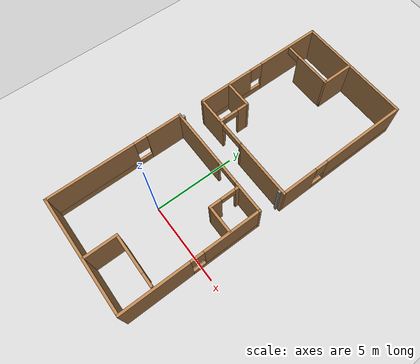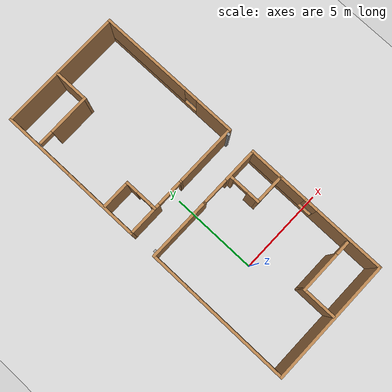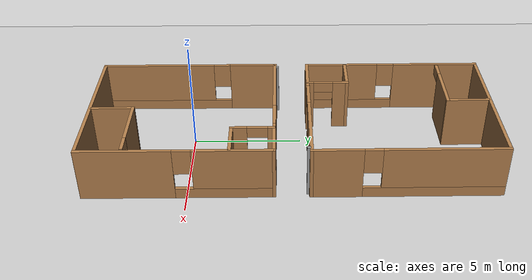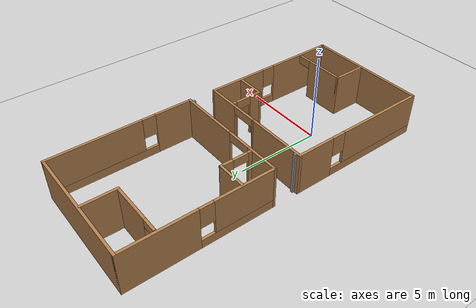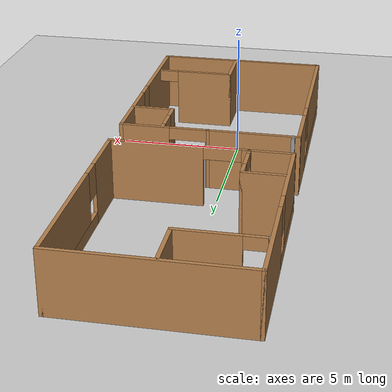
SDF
<sdf version="1.7">
 <world name="default">
  <light name="sun" type="directional">
   <pose>0 0 10 0 -0 0</pose>
   <diffuse>0.8 0.8 0.8 1</diffuse>
   <specular>0.2 0.2 0.2 1</specular>
   <attenuation>
    <range>1000</range>
    <constant>0.9</constant>
    <linear>0.01</linear>
    <quadratic>0.001</quadratic>
   </attenuation>
   <direction>-0.5 0.1 -0.9</direction>
   <spot><inner_angle>0</inner_angle><outer_angle>0</outer_angle><falloff>0</falloff></spot>
  </light>
  <model name="ground_plane">
   <static>1</static>
   <link name="link">
    <collision name="collision">
     <geometry><plane><normal>0 0 1</normal><size>100 100</size></plane></geometry>
     <surface><friction><ode><mu>100</mu><mu2>50</mu2></ode></friction></surface>
    </collision>
    <visual name="visual">
     <cast_shadows>0</cast_shadows>
     <geometry><plane><normal>0 0 1</normal><size>100 100</size></plane></geometry>
     <material>
      <script><uri>file://media/materials/scripts/gazebo.material</uri><name>Gazebo/Grey</name></script>
     </material>
    </visual>
   </link>
  </model>
  <gravity>0 0 -9.8</gravity>
  <magnetic_field>6e-06 2.3e-05 -4.2e-05</magnetic_field>
  <atmosphere type="adiabatic"/>
  <physics type="ode">
   <max_step_size>0.001</max_step_size>
   <real_time_factor>1</real_time_factor>
   <real_time_update_rate>1000</real_time_update_rate>
  </physics>
  <scene><ambient>0.4 0.4 0.4 1</ambient><background>0.7 0.7 0.7 1</background><shadows>1</shadows></scene>
  <audio><device>default</device></audio>
  <spherical_coordinates>
   <surface_model>EARTH_WGS84</surface_model>
   <latitude_deg>0</latitude_deg>
   <longitude_deg>0</longitude_deg>
   <elevation>0</elevation>
   <heading_deg>0</heading_deg>
  </spherical_coordinates>
  <model name="cafe">
   <pose>0.555959 -0.30949 0 0 -0 0</pose>
   <link name="Wall_12">
    <collision name="Wall_12_Collision">
     <geometry><box><size>3.75 0.15 2.5</size></box></geometry>
     <pose>0 0 1.25 0 -0 0</pose>
    </collision>
    <visual name="Wall_12_Visual">
     <pose>0 0 1.25 0 -0 0</pose>
     <geometry><box><size>3.75 0.15 2.5</size></box></geometry>
     <material>
      <script><uri>file://media/materials/scripts/gazebo.material</uri><name>Gazebo/Wood</name></script>
      <ambient>1 1 1 1</ambient>
     </material>
     <meta><layer>0</layer></meta>
    </visual>
    <pose>-1.75 4.11895 0 0 -0 3.14159</pose>
   </link>
   <link name="Wall_13">
    <pose>-3.55 -0.05605 0 0 -0 -1.5708</pose>
    <visual name="Wall_13_Visual_0">
     <pose>-3.10562 0 1.25 0 -0 0</pose>
     <geometry><box><size>2.28876 0.15 2.5</size></box></geometry>
     <material>
      <script><uri>file://media/materials/scripts/gazebo.material</uri><name>Gazebo/Wood</name></script>
      <ambient>1 1 1 1</ambient>
     </material>
     <meta><layer>0</layer></meta>
    </visual>
    <collision name="Wall_13_Collision_0">
     <geometry><box><size>2.28876 0.15 2.5</size></box></geometry>
     <pose>-3.10562 0 1.25 0 -0 0</pose>
    </collision>
    <visual name="Wall_13_Visual_1">
     <pose>1.14438 0 0.25 0 -0 0</pose>
     <geometry><box><size>6.21124 0.15 0.5</size></box></geometry>
     <material>
      <script><uri>file://media/materials/scripts/gazebo.material</uri><name>Gazebo/Wood</name></script>
      <ambient>1 1 1 1</ambient>
     </material>
     <meta><layer>0</layer></meta>
    </visual>
    <collision name="Wall_13_Collision_1">
     <geometry><box><size>6.21124 0.15 0.5</size></box></geometry>
     <pose>1.14438 0 0.25 0 -0 0</pose>
    </collision>
    <visual name="Wall_13_Visual_2">
     <pose>1.54438 0 1.5 0 -0 0</pose>
     <geometry><box><size>5.41124 0.15 2</size></box></geometry>
     <material>
      <script><uri>file://media/materials/scripts/gazebo.material</uri><name>Gazebo/Wood</name></script>
      <ambient>1 1 1 1</ambient>
     </material>
     <meta><layer>0</layer></meta>
    </visual>
    <collision name="Wall_13_Collision_2">
     <geometry><box><size>5.41124 0.15 2</size></box></geometry>
     <pose>1.54438 0 1.5 0 -0 0</pose>
    </collision>
    <visual name="Wall_13_Visual_3">
     <pose>-1.56124 0 1.9 0 -0 0</pose>
     <geometry><box><size>0.8 0.15 1.2</size></box></geometry>
     <material>
      <script><uri>file://media/materials/scripts/gazebo.material</uri><name>Gazebo/Wood</name></script>
      <ambient>1 1 1 1</ambient>
     </material>
     <meta><layer>0</layer></meta>
    </visual>
    <collision name="Wall_13_Collision_3">
     <geometry><box><size>0.8 0.15 1.2</size></box></geometry>
     <pose>-1.56124 0 1.9 0 -0 0</pose>
    </collision>
   </link>
   <link name="Wall_14">
    <collision name="Wall_14_Collision">
     <geometry><box><size>7.25 0.15 2.5</size></box></geometry>
     <pose>0 0 1.25 0 -0 0</pose>
    </collision>
    <visual name="Wall_14_Visual">
     <pose>0 0 1.25 0 -0 0</pose>
     <geometry><box><size>7.25 0.15 2.5</size></box></geometry>
     <material>
      <script><uri>file://media/materials/scripts/gazebo.material</uri><name>Gazebo/Wood</name></script>
      <ambient>1 1 1 1</ambient>
     </material>
     <meta><layer>0</layer></meta>
    </visual>
    <pose>-0 -4.23105 0 0 -0 0</pose>
   </link>
   <link name="Wall_15">
    <pose>3.55 -0.05605 0 0 -0 1.5708</pose>
    <visual name="Wall_15_Visual_0">
     <pose>-2.18047 0 1.25 0 -0 0</pose>
     <geometry><box><size>4.13906 0.15 2.5</size></box></geometry>
     <material>
      <script><uri>file://media/materials/scripts/gazebo.material</uri><name>Gazebo/Wood</name></script>
      <ambient>1 1 1 1</ambient>
     </material>
     <meta><layer>0</layer></meta>
    </visual>
    <collision name="Wall_15_Collision_0">
     <geometry><box><size>4.13906 0.15 2.5</size></box></geometry>
     <pose>-2.18047 0 1.25 0 -0 0</pose>
    </collision>
    <visual name="Wall_15_Visual_1">
     <pose>2.06953 0 0.25 0 -0 0</pose>
     <geometry><box><size>4.36094 0.15 0.5</size></box></geometry>
     <material>
      <script><uri>file://media/materials/scripts/gazebo.material</uri><name>Gazebo/Wood</name></script>
      <ambient>1 1 1 1</ambient>
     </material>
     <meta><layer>0</layer></meta>
    </visual>
    <collision name="Wall_15_Collision_1">
     <geometry><box><size>4.36094 0.15 0.5</size></box></geometry>
     <pose>2.06953 0 0.25 0 -0 0</pose>
    </collision>
    <visual name="Wall_15_Visual_2">
     <pose>2.46953 0 1.5 0 -0 0</pose>
     <geometry><box><size>3.56094 0.15 2</size></box></geometry>
     <material>
      <script><uri>file://media/materials/scripts/gazebo.material</uri><name>Gazebo/Wood</name></script>
      <ambient>1 1 1 1</ambient>
     </material>
     <meta><layer>0</layer></meta>
    </visual>
    <collision name="Wall_15_Collision_2">
     <geometry><box><size>3.56094 0.15 2</size></box></geometry>
     <pose>2.46953 0 1.5 0 -0 0</pose>
    </collision>
    <visual name="Wall_15_Visual_3">
     <pose>0.289058 0 1.9 0 -0 0</pose>
     <geometry><box><size>0.8 0.15 1.2</size></box></geometry>
     <material>
      <script><uri>file://media/materials/scripts/gazebo.material</uri><name>Gazebo/Wood</name></script>
      <ambient>1 1 1 1</ambient>
     </material>
     <meta><layer>0</layer></meta>
    </visual>
    <collision name="Wall_15_Collision_3">
     <geometry><box><size>0.8 0.15 1.2</size></box></geometry>
     <pose>0.289058 0 1.9 0 -0 0</pose>
    </collision>
   </link>
   <link name="Wall_16">
    <pose>1.8 4.11895 0 0 -0 3.14159</pose>
    <visual name="Wall_16_Visual_0">
     <pose>-0.806069 0 1.25 0 -0 0</pose>
     <geometry><box><size>2.03786 0.15 2.5</size></box></geometry>
     <material>
      <script><uri>file://media/materials/scripts/gazebo.material</uri><name>Gazebo/Wood</name></script>
      <ambient>1 1 1 1</ambient>
     </material>
     <meta><layer>0</layer></meta>
    </visual>
    <collision name="Wall_16_Collision_0">
     <geometry><box><size>2.03786 0.15 2.5</size></box></geometry>
     <pose>-0.806069 0 1.25 0 -0 0</pose>
    </collision>
    <visual name="Wall_16_Visual_1">
     <pose>1.76963 0 1.25 0 -0 0</pose>
     <geometry><box><size>0.110743 0.15 2.5</size></box></geometry>
     <material>
      <script><uri>file://media/materials/scripts/gazebo.material</uri><name>Gazebo/Wood</name></script>
      <ambient>1 1 1 1</ambient>
     </material>
     <meta><layer>0</layer></meta>
    </visual>
    <collision name="Wall_16_Collision_1">
     <geometry><box><size>0.110743 0.15 2.5</size></box></geometry>
     <pose>1.76963 0 1.25 0 -0 0</pose>
    </collision>
    <visual name="Wall_16_Visual_2">
     <pose>0.963559 0 2.25 0 -0 0</pose>
     <geometry><box><size>1.5014 0.15 0.5</size></box></geometry>
     <material>
      <script><uri>file://media/materials/scripts/gazebo.material</uri><name>Gazebo/Wood</name></script>
      <ambient>1 1 1 1</ambient>
     </material>
     <meta><layer>0</layer></meta>
    </visual>
    <collision name="Wall_16_Collision_2">
     <geometry><box><size>1.5014 0.15 0.5</size></box></geometry>
     <pose>0.963559 0 2.25 0 -0 0</pose>
    </collision>
   </link>
   <link name="Wall_18">
    <pose>1.87732 3.17037 0 0 -0 1.5708</pose>
    <visual name="Wall_18_Visual_0">
     <pose>-0.6208 0 1.25 0 -0 0</pose>
     <geometry><box><size>0.7584 0.15 2.5</size></box></geometry>
     <material>
      <script><uri>file://media/materials/scripts/gazebo.material</uri><name>Gazebo/Wood</name></script>
      <ambient>1 1 1 1</ambient>
     </material>
     <meta><layer>0</layer></meta>
    </visual>
    <collision name="Wall_18_Collision_0">
     <geometry><box><size>0.7584 0.15 2.5</size></box></geometry>
     <pose>-0.6208 0 1.25 0 -0 0</pose>
    </collision>
    <visual name="Wall_18_Visual_1">
     <pose>0.8292 0 1.25 0 -0 0</pose>
     <geometry><box><size>0.3416 0.15 2.5</size></box></geometry>
     <material>
      <script><uri>file://media/materials/scripts/gazebo.material</uri><name>Gazebo/Wood</name></script>
      <ambient>1 1 1 1</ambient>
     </material>
     <meta><layer>0</layer></meta>
    </visual>
    <collision name="Wall_18_Collision_1">
     <geometry><box><size>0.3416 0.15 2.5</size></box></geometry>
     <pose>0.8292 0 1.25 0 -0 0</pose>
    </collision>
    <visual name="Wall_18_Visual_2">
     <pose>0.2084 0 2.25 0 -0 0</pose>
     <geometry><box><size>0.9 0.15 0.5</size></box></geometry>
     <material>
      <script><uri>file://media/materials/scripts/gazebo.material</uri><name>Gazebo/Wood</name></script>
      <ambient>1 1 1 1</ambient>
     </material>
     <meta><layer>0</layer></meta>
    </visual>
    <collision name="Wall_18_Collision_2">
     <geometry><box><size>0.9 0.15 0.5</size></box></geometry>
     <pose>0.2084 0 2.25 0 -0 0</pose>
    </collision>
   </link>
   <link name="Wall_20">
    <collision name="Wall_20_Collision">
     <geometry><box><size>1.75 0.15 2.5</size></box></geometry>
     <pose>0 0 1.25 0 -0 0</pose>
    </collision>
    <visual name="Wall_20_Visual">
     <pose>0 0 1.25 0 -0 0</pose>
     <geometry><box><size>1.75 0.15 2.5</size></box></geometry>
     <material>
      <script><uri>file://media/materials/scripts/gazebo.material</uri><name>Gazebo/Wood</name></script>
      <ambient>1 1 1 1</ambient>
     </material>
     <meta><layer>0</layer></meta>
    </visual>
    <pose>2.67732 2.24537 0 0 -0 0</pose>
   </link>
   <link name="Wall_22">
    <collision name="Wall_22_Collision">
     <geometry><box><size>2 0.15 2.5</size></box></geometry>
     <pose>0 0 1.25 0 -0 0</pose>
    </collision>
    <visual name="Wall_22_Visual">
     <pose>0 0 1.25 0 -0 0</pose>
     <geometry><box><size>2 0.15 2.5</size></box></geometry>
     <material>
      <script><uri>file://media/materials/scripts/gazebo.material</uri><name>Gazebo/Wood</name></script>
      <ambient>1 1 1 1</ambient>
     </material>
     <meta><layer>0</layer></meta>
    </visual>
    <pose>0.258175 -3.21368 0 0 -0 1.5708</pose>
   </link>
   <link name="Wall_24">
    <pose>1.80818 -2.28868 0 0 -0 0</pose>
    <visual name="Wall_24_Visual_0">
     <pose>-0.413098 0 1.25 0 -0 0</pose>
     <geometry><box><size>2.4238 0.15 2.5</size></box></geometry>
     <material>
      <script><uri>file://media/materials/scripts/gazebo.material</uri><name>Gazebo/Wood</name></script>
      <ambient>1 1 1 1</ambient>
     </material>
     <meta><layer>0</layer></meta>
    </visual>
    <collision name="Wall_24_Collision_0">
     <geometry><box><size>2.4238 0.15 2.5</size></box></geometry>
     <pose>-0.413098 0 1.25 0 -0 0</pose>
    </collision>
    <visual name="Wall_24_Visual_1">
     <pose>1.2119 0 2.25 0 -0 0</pose>
     <geometry><box><size>0.826196 0.15 0.5</size></box></geometry>
     <material>
      <script><uri>file://media/materials/scripts/gazebo.material</uri><name>Gazebo/Wood</name></script>
      <ambient>1 1 1 1</ambient>
     </material>
     <meta><layer>0</layer></meta>
    </visual>
    <collision name="Wall_24_Collision_1">
     <geometry><box><size>0.826196 0.15 0.5</size></box></geometry>
     <pose>1.2119 0 2.25 0 -0 0</pose>
    </collision>
   </link>
   <link name="Wall_6">
    <collision name="Wall_6_Collision">
     <geometry><box><size>0.15 0.15 2.5</size></box></geometry>
     <pose>0 0 1.25 0 -0 0</pose>
    </collision>
    <visual name="Wall_6_Visual">
     <pose>0 0 1.25 0 -0 0</pose>
     <geometry><box><size>0.15 0.15 2.5</size></box></geometry>
     <material>
      <script><uri>file://media/materials/scripts/gazebo.material</uri><name>Gazebo/Grey</name></script>
      <ambient>1 1 1 1</ambient>
     </material>
     <meta><layer>0</layer></meta>
    </visual>
    <pose>-3.33328 4.23105 0 0 -0 0</pose>
   </link>
   <static>1</static>
  </model>
  <model name="cafe_0">
   <pose>0.572592 9.50781 0 0 0 -3.13799</pose>
   <link name="Wall_12">
    <collision name="Wall_12_Collision">
     <geometry><box><size>3.75 0.15 2.5</size></box></geometry>
     <pose>0 0 1.25 0 -0 0</pose>
    </collision>
    <visual name="Wall_12_Visual">
     <pose>0 0 1.25 0 -0 0</pose>
     <geometry><box><size>3.75 0.15 2.5</size></box></geometry>
     <material>
      <script><uri>file://media/materials/scripts/gazebo.material</uri><name>Gazebo/Wood</name></script>
      <ambient>1 1 1 1</ambient>
     </material>
     <meta><layer>0</layer></meta>
    </visual>
    <pose>-1.75 4.11895 0 0 -0 3.14159</pose>
   </link>
   <link name="Wall_13">
    <pose>-3.55 -0.05605 0 0 -0 -1.5708</pose>
    <visual name="Wall_13_Visual_0">
     <pose>-3.10562 0 1.25 0 -0 0</pose>
     <geometry><box><size>2.28876 0.15 2.5</size></box></geometry>
     <material>
      <script><uri>file://media/materials/scripts/gazebo.material</uri><name>Gazebo/Wood</name></script>
      <ambient>1 1 1 1</ambient>
     </material>
     <meta><layer>0</layer></meta>
    </visual>
    <collision name="Wall_13_Collision_0">
     <geometry><box><size>2.28876 0.15 2.5</size></box></geometry>
     <pose>-3.10562 0 1.25 0 -0 0</pose>
    </collision>
    <visual name="Wall_13_Visual_1">
     <pose>1.14438 0 0.25 0 -0 0</pose>
     <geometry><box><size>6.21124 0.15 0.5</size></box></geometry>
     <material>
      <script><uri>file://media/materials/scripts/gazebo.material</uri><name>Gazebo/Wood</name></script>
      <ambient>1 1 1 1</ambient>
     </material>
     <meta><layer>0</layer></meta>
    </visual>
    <collision name="Wall_13_Collision_1">
     <geometry><box><size>6.21124 0.15 0.5</size></box></geometry>
     <pose>1.14438 0 0.25 0 -0 0</pose>
    </collision>
    <visual name="Wall_13_Visual_2">
     <pose>1.54438 0 1.5 0 -0 0</pose>
     <geometry><box><size>5.41124 0.15 2</size></box></geometry>
     <material>
      <script><uri>file://media/materials/scripts/gazebo.material</uri><name>Gazebo/Wood</name></script>
      <ambient>1 1 1 1</ambient>
     </material>
     <meta><layer>0</layer></meta>
    </visual>
    <collision name="Wall_13_Collision_2">
     <geometry><box><size>5.41124 0.15 2</size></box></geometry>
     <pose>1.54438 0 1.5 0 -0 0</pose>
    </collision>
    <visual name="Wall_13_Visual_3">
     <pose>-1.56124 0 1.9 0 -0 0</pose>
     <geometry><box><size>0.8 0.15 1.2</size></box></geometry>
     <material>
      <script><uri>file://media/materials/scripts/gazebo.material</uri><name>Gazebo/Wood</name></script>
      <ambient>1 1 1 1</ambient>
     </material>
     <meta><layer>0</layer></meta>
    </visual>
    <collision name="Wall_13_Collision_3">
     <geometry><box><size>0.8 0.15 1.2</size></box></geometry>
     <pose>-1.56124 0 1.9 0 -0 0</pose>
    </collision>
   </link>
   <link name="Wall_14">
    <collision name="Wall_14_Collision">
     <geometry><box><size>7.25 0.15 2.5</size></box></geometry>
     <pose>0 0 1.25 0 -0 0</pose>
    </collision>
    <visual name="Wall_14_Visual">
     <pose>0 0 1.25 0 -0 0</pose>
     <geometry><box><size>7.25 0.15 2.5</size></box></geometry>
     <material>
      <script><uri>file://media/materials/scripts/gazebo.material</uri><name>Gazebo/Wood</name></script>
      <ambient>1 1 1 1</ambient>
     </material>
     <meta><layer>0</layer></meta>
    </visual>
    <pose>-0 -4.23105 0 0 -0 0</pose>
   </link>
   <link name="Wall_15">
    <pose>3.55 -0.05605 0 0 -0 1.5708</pose>
    <visual name="Wall_15_Visual_0">
     <pose>-2.18047 0 1.25 0 -0 0</pose>
     <geometry><box><size>4.13906 0.15 2.5</size></box></geometry>
     <material>
      <script><uri>file://media/materials/scripts/gazebo.material</uri><name>Gazebo/Wood</name></script>
      <ambient>1 1 1 1</ambient>
     </material>
     <meta><layer>0</layer></meta>
    </visual>
    <collision name="Wall_15_Collision_0">
     <geometry><box><size>4.13906 0.15 2.5</size></box></geometry>
     <pose>-2.18047 0 1.25 0 -0 0</pose>
    </collision>
    <visual name="Wall_15_Visual_1">
     <pose>2.06953 0 0.25 0 -0 0</pose>
     <geometry><box><size>4.36094 0.15 0.5</size></box></geometry>
     <material>
      <script><uri>file://media/materials/scripts/gazebo.material</uri><name>Gazebo/Wood</name></script>
      <ambient>1 1 1 1</ambient>
     </material>
     <meta><layer>0</layer></meta>
    </visual>
    <collision name="Wall_15_Collision_1">
     <geometry><box><size>4.36094 0.15 0.5</size></box></geometry>
     <pose>2.06953 0 0.25 0 -0 0</pose>
    </collision>
    <visual name="Wall_15_Visual_2">
     <pose>2.46953 0 1.5 0 -0 0</pose>
     <geometry><box><size>3.56094 0.15 2</size></box></geometry>
     <material>
      <script><uri>file://media/materials/scripts/gazebo.material</uri><name>Gazebo/Wood</name></script>
      <ambient>1 1 1 1</ambient>
     </material>
     <meta><layer>0</layer></meta>
    </visual>
    <collision name="Wall_15_Collision_2">
     <geometry><box><size>3.56094 0.15 2</size></box></geometry>
     <pose>2.46953 0 1.5 0 -0 0</pose>
    </collision>
    <visual name="Wall_15_Visual_3">
     <pose>0.289058 0 1.9 0 -0 0</pose>
     <geometry><box><size>0.8 0.15 1.2</size></box></geometry>
     <material>
      <script><uri>file://media/materials/scripts/gazebo.material</uri><name>Gazebo/Wood</name></script>
      <ambient>1 1 1 1</ambient>
     </material>
     <meta><layer>0</layer></meta>
    </visual>
    <collision name="Wall_15_Collision_3">
     <geometry><box><size>0.8 0.15 1.2</size></box></geometry>
     <pose>0.289058 0 1.9 0 -0 0</pose>
    </collision>
   </link>
   <link name="Wall_16">
    <pose>1.8 4.11895 0 0 -0 3.14159</pose>
    <visual name="Wall_16_Visual_0">
     <pose>-0.806069 0 1.25 0 -0 0</pose>
     <geometry><box><size>2.03786 0.15 2.5</size></box></geometry>
     <material>
      <script><uri>file://media/materials/scripts/gazebo.material</uri><name>Gazebo/Wood</name></script>
      <ambient>1 1 1 1</ambient>
     </material>
     <meta><layer>0</layer></meta>
    </visual>
    <collision name="Wall_16_Collision_0">
     <geometry><box><size>2.03786 0.15 2.5</size></box></geometry>
     <pose>-0.806069 0 1.25 0 -0 0</pose>
    </collision>
    <visual name="Wall_16_Visual_1">
     <pose>1.76963 0 1.25 0 -0 0</pose>
     <geometry><box><size>0.110743 0.15 2.5</size></box></geometry>
     <material>
      <script><uri>file://media/materials/scripts/gazebo.material</uri><name>Gazebo/Wood</name></script>
      <ambient>1 1 1 1</ambient>
     </material>
     <meta><layer>0</layer></meta>
    </visual>
    <collision name="Wall_16_Collision_1">
     <geometry><box><size>0.110743 0.15 2.5</size></box></geometry>
     <pose>1.76963 0 1.25 0 -0 0</pose>
    </collision>
    <visual name="Wall_16_Visual_2">
     <pose>0.963559 0 2.25 0 -0 0</pose>
     <geometry><box><size>1.5014 0.15 0.5</size></box></geometry>
     <material>
      <script><uri>file://media/materials/scripts/gazebo.material</uri><name>Gazebo/Wood</name></script>
      <ambient>1 1 1 1</ambient>
     </material>
     <meta><layer>0</layer></meta>
    </visual>
    <collision name="Wall_16_Collision_2">
     <geometry><box><size>1.5014 0.15 0.5</size></box></geometry>
     <pose>0.963559 0 2.25 0 -0 0</pose>
    </collision>
   </link>
   <link name="Wall_18">
    <pose>1.87732 3.17037 0 0 -0 1.5708</pose>
    <visual name="Wall_18_Visual_0">
     <pose>-0.6208 0 1.25 0 -0 0</pose>
     <geometry><box><size>0.7584 0.15 2.5</size></box></geometry>
     <material>
      <script><uri>file://media/materials/scripts/gazebo.material</uri><name>Gazebo/Wood</name></script>
      <ambient>1 1 1 1</ambient>
     </material>
     <meta><layer>0</layer></meta>
    </visual>
    <collision name="Wall_18_Collision_0">
     <geometry><box><size>0.7584 0.15 2.5</size></box></geometry>
     <pose>-0.6208 0 1.25 0 -0 0</pose>
    </collision>
    <visual name="Wall_18_Visual_1">
     <pose>0.8292 0 1.25 0 -0 0</pose>
     <geometry><box><size>0.3416 0.15 2.5</size></box></geometry>
     <material>
      <script><uri>file://media/materials/scripts/gazebo.material</uri><name>Gazebo/Wood</name></script>
      <ambient>1 1 1 1</ambient>
     </material>
     <meta><layer>0</layer></meta>
    </visual>
    <collision name="Wall_18_Collision_1">
     <geometry><box><size>0.3416 0.15 2.5</size></box></geometry>
     <pose>0.8292 0 1.25 0 -0 0</pose>
    </collision>
    <visual name="Wall_18_Visual_2">
     <pose>0.2084 0 2.25 0 -0 0</pose>
     <geometry><box><size>0.9 0.15 0.5</size></box></geometry>
     <material>
      <script><uri>file://media/materials/scripts/gazebo.material</uri><name>Gazebo/Wood</name></script>
      <ambient>1 1 1 1</ambient>
     </material>
     <meta><layer>0</layer></meta>
    </visual>
    <collision name="Wall_18_Collision_2">
     <geometry><box><size>0.9 0.15 0.5</size></box></geometry>
     <pose>0.2084 0 2.25 0 -0 0</pose>
    </collision>
   </link>
   <link name="Wall_20">
    <collision name="Wall_20_Collision">
     <geometry><box><size>1.75 0.15 2.5</size></box></geometry>
     <pose>0 0 1.25 0 -0 0</pose>
    </collision>
    <visual name="Wall_20_Visual">
     <pose>0 0 1.25 0 -0 0</pose>
     <geometry><box><size>1.75 0.15 2.5</size></box></geometry>
     <material>
      <script><uri>file://media/materials/scripts/gazebo.material</uri><name>Gazebo/Wood</name></script>
      <ambient>1 1 1 1</ambient>
     </material>
     <meta><layer>0</layer></meta>
    </visual>
    <pose>2.67732 2.24537 0 0 -0 0</pose>
   </link>
   <link name="Wall_22">
    <collision name="Wall_22_Collision">
     <geometry><box><size>2 0.15 2.5</size></box></geometry>
     <pose>0 0 1.25 0 -0 0</pose>
    </collision>
    <visual name="Wall_22_Visual">
     <pose>0 0 1.25 0 -0 0</pose>
     <geometry><box><size>2 0.15 2.5</size></box></geometry>
     <material>
      <script><uri>file://media/materials/scripts/gazebo.material</uri><name>Gazebo/Wood</name></script>
      <ambient>1 1 1 1</ambient>
     </material>
     <meta><layer>0</layer></meta>
    </visual>
    <pose>0.258175 -3.21368 0 0 -0 1.5708</pose>
   </link>
   <link name="Wall_24">
    <pose>1.80818 -2.28868 0 0 -0 0</pose>
    <visual name="Wall_24_Visual_0">
     <pose>-0.413098 0 1.25 0 -0 0</pose>
     <geometry><box><size>2.4238 0.15 2.5</size></box></geometry>
     <material>
      <script><uri>file://media/materials/scripts/gazebo.material</uri><name>Gazebo/Wood</name></script>
      <ambient>1 1 1 1</ambient>
     </material>
     <meta><layer>0</layer></meta>
    </visual>
    <collision name="Wall_24_Collision_0">
     <geometry><box><size>2.4238 0.15 2.5</size></box></geometry>
     <pose>-0.413098 0 1.25 0 -0 0</pose>
    </collision>
    <visual name="Wall_24_Visual_1">
     <pose>1.2119 0 2.25 0 -0 0</pose>
     <geometry><box><size>0.826196 0.15 0.5</size></box></geometry>
     <material>
      <script><uri>file://media/materials/scripts/gazebo.material</uri><name>Gazebo/Wood</name></script>
      <ambient>1 1 1 1</ambient>
     </material>
     <meta><layer>0</layer></meta>
    </visual>
    <collision name="Wall_24_Collision_1">
     <geometry><box><size>0.826196 0.15 0.5</size></box></geometry>
     <pose>1.2119 0 2.25 0 -0 0</pose>
    </collision>
   </link>
   <link name="Wall_6">
    <collision name="Wall_6_Collision">
     <geometry><box><size>0.15 0.15 2.5</size></box></geometry>
     <pose>0 0 1.25 0 -0 0</pose>
    </collision>
    <visual name="Wall_6_Visual">
     <pose>0 0 1.25 0 -0 0</pose>
     <geometry><box><size>0.15 0.15 2.5</size></box></geometry>
     <material>
      <script><uri>file://media/materials/scripts/gazebo.material</uri><name>Gazebo/Grey</name></script>
      <ambient>1 1 1 1</ambient>
     </material>
     <meta><layer>0</layer></meta>
    </visual>
    <pose>-3.33328 4.23105 0 0 -0 0</pose>
   </link>
   <static>1</static>
  </model>
 </world>
</sdf>
